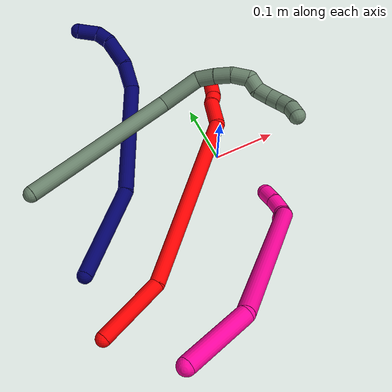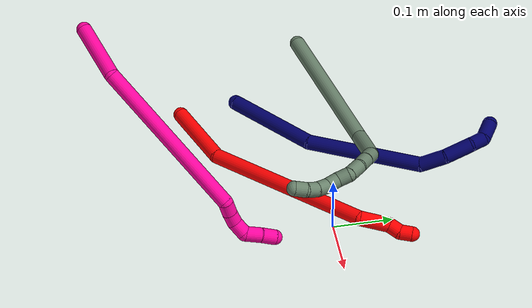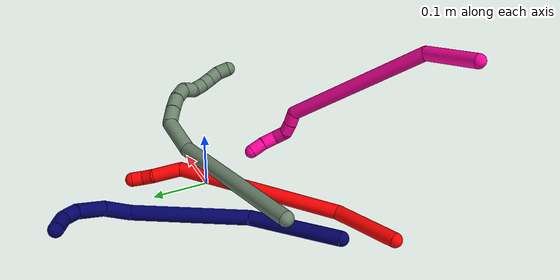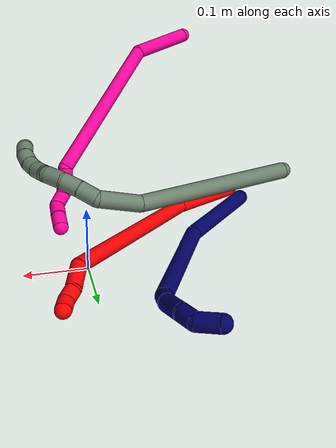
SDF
<sdf version="1.7">
 <world name="default">
  <model name="2">
   <static>0</static>
   <link name="2">
    <collision name="collision-cylinder-e_1_1_4">
     <pose>0.047054 0.029443 0.017783 -1.02746 0.939561 -0.558002</pose>
     <geometry><cylinder><radius>0.0125</radius><length>0.11657</length></cylinder></geometry>
     <surface>
      <friction><ode><mu>1.16</mu><mu2>1.16</mu2><slip1>0</slip1><slip2>0</slip2></ode></friction>
      <contact><ode><kp>1e+06</kp><kd>1</kd><max_vel>0</max_vel><min_depth>0.001</min_depth></ode></contact>
     </surface>
    </collision>
    <visual name="visual-cylinder-e_1_1_4">
     <pose>0.047054 0.029443 0.017783 -1.02746 0.939561 -0.558002</pose>
     <geometry><cylinder><radius>0.0125</radius><length>0.11657</length></cylinder></geometry>
     <material><ambient>1 0 0 1</ambient></material>
    </visual>
    <collision name="collision-cylinder-e_2_4_5">
     <pose>0.200089 0.159448 0.030215 -1.62395 0.810927 -0.850184</pose>
     <geometry><cylinder><radius>0.0125</radius><length>0.292393</length></cylinder></geometry>
     <surface>
      <friction><ode><mu>1.16</mu><mu2>1.16</mu2><slip1>0</slip1><slip2>0</slip2></ode></friction>
      <contact><ode><kp>1e+06</kp><kd>1</kd><max_vel>0</max_vel><min_depth>0.001</min_depth></ode></contact>
     </surface>
    </collision>
    <visual name="visual-cylinder-e_2_4_5">
     <pose>0.200089 0.159448 0.030215 -1.62395 0.810927 -0.850184</pose>
     <geometry><cylinder><radius>0.0125</radius><length>0.292393</length></cylinder></geometry>
     <material><ambient>1 0 0 1</ambient></material>
    </visual>
    <collision name="collision-cylinder-e_3_5_6">
     <pose>0.323056 0.272101 0.011044 -2.42283 0.746458 -1.61219</pose>
     <geometry><cylinder><radius>0.0125</radius><length>0.050029</length></cylinder></geometry>
     <surface>
      <friction><ode><mu>1.16</mu><mu2>1.16</mu2><slip1>0</slip1><slip2>0</slip2></ode></friction>
      <contact><ode><kp>1e+06</kp><kd>1</kd><max_vel>0</max_vel><min_depth>0.001</min_depth></ode></contact>
     </surface>
    </collision>
    <visual name="visual-cylinder-e_3_5_6">
     <pose>0.323056 0.272101 0.011044 -2.42283 0.746458 -1.61219</pose>
     <geometry><cylinder><radius>0.0125</radius><length>0.050029</length></cylinder></geometry>
     <material><ambient>1 0 0 1</ambient></material>
    </visual>
    <collision name="collision-cylinder-e_4_6_7">
     <pose>0.349275 0.287813 -0.005351 -2.18885 1.12229 -1.76681</pose>
     <geometry><cylinder><radius>0.0125</radius><length>0.020494</length></cylinder></geometry>
     <surface>
      <friction><ode><mu>1.16</mu><mu2>1.16</mu2><slip1>0</slip1><slip2>0</slip2></ode></friction>
      <contact><ode><kp>1e+06</kp><kd>1</kd><max_vel>0</max_vel><min_depth>0.001</min_depth></ode></contact>
     </surface>
    </collision>
    <visual name="visual-cylinder-e_4_6_7">
     <pose>0.349275 0.287813 -0.005351 -2.18885 1.12229 -1.76681</pose>
     <geometry><cylinder><radius>0.0125</radius><length>0.020494</length></cylinder></geometry>
     <material><ambient>1 0 0 1</ambient></material>
    </visual>
    <collision name="collision-cylinder-e_5_7_2">
     <pose>0.364992 0.29729 -0.0133 -2.31344 0.684244 -1.36201</pose>
     <geometry><cylinder><radius>0.0125</radius><length>0.020514</length></cylinder></geometry>
     <surface>
      <friction><ode><mu>1.16</mu><mu2>1.16</mu2><slip1>0</slip1><slip2>0</slip2></ode></friction>
      <contact><ode><kp>1e+06</kp><kd>1</kd><max_vel>0</max_vel><min_depth>0.001</min_depth></ode></contact>
     </surface>
    </collision>
    <visual name="visual-cylinder-e_5_7_2">
     <pose>0.364992 0.29729 -0.0133 -2.31344 0.684244 -1.36201</pose>
     <geometry><cylinder><radius>0.0125</radius><length>0.020514</length></cylinder></geometry>
     <material><ambient>1 0 0 1</ambient></material>
    </visual>
    <collision name="collision-sphere-2">
     <pose>0.371476 0.303145 -0.018675 0 -0 0</pose>
     <geometry><sphere><radius>0.0125</radius></sphere></geometry>
     <surface>
      <friction><ode><mu>1.16</mu><mu2>1.16</mu2><slip1>0</slip1><slip2>0</slip2></ode></friction>
      <contact><ode><kp>1e+06</kp><kd>1</kd><max_vel>0</max_vel><min_depth>0.001</min_depth></ode></contact>
     </surface>
    </collision>
    <visual name="visual-sphere-2">
     <pose>0.371476 0.303145 -0.018675 0 -0 0</pose>
     <geometry><sphere><radius>0.0125</radius></sphere></geometry>
     <material><ambient>1 0 0 1</ambient></material>
    </visual>
    <collision name="collision-sphere-7">
     <pose>0.358509 0.291435 -0.007925 0 -0 0</pose>
     <geometry><sphere><radius>0.0125</radius></sphere></geometry>
     <surface>
      <friction><ode><mu>1.16</mu><mu2>1.16</mu2><slip1>0</slip1><slip2>0</slip2></ode></friction>
      <contact><ode><kp>1e+06</kp><kd>1</kd><max_vel>0</max_vel><min_depth>0.001</min_depth></ode></contact>
     </surface>
    </collision>
    <visual name="visual-sphere-7">
     <pose>0.358509 0.291435 -0.007925 0 -0 0</pose>
     <geometry><sphere><radius>0.0125</radius></sphere></geometry>
     <material><ambient>1 0 0 1</ambient></material>
    </visual>
    <collision name="collision-sphere-6">
     <pose>0.340042 0.284192 -0.002776 0 -0 0</pose>
     <geometry><sphere><radius>0.0125</radius></sphere></geometry>
     <surface>
      <friction><ode><mu>1.16</mu><mu2>1.16</mu2><slip1>0</slip1><slip2>0</slip2></ode></friction>
      <contact><ode><kp>1e+06</kp><kd>1</kd><max_vel>0</max_vel><min_depth>0.001</min_depth></ode></contact>
     </surface>
    </collision>
    <visual name="visual-sphere-6">
     <pose>0.340042 0.284192 -0.002776 0 -0 0</pose>
     <geometry><sphere><radius>0.0125</radius></sphere></geometry>
     <material><ambient>1 0 0 1</ambient></material>
    </visual>
    <collision name="collision-sphere-5">
     <pose>0.30607 0.260009 0.024865 0 -0 0</pose>
     <geometry><sphere><radius>0.0125</radius></sphere></geometry>
     <surface>
      <friction><ode><mu>1.16</mu><mu2>1.16</mu2><slip1>0</slip1><slip2>0</slip2></ode></friction>
      <contact><ode><kp>1e+06</kp><kd>1</kd><max_vel>0</max_vel><min_depth>0.001</min_depth></ode></contact>
     </surface>
    </collision>
    <visual name="visual-sphere-5">
     <pose>0.30607 0.260009 0.024865 0 -0 0</pose>
     <geometry><sphere><radius>0.0125</radius></sphere></geometry>
     <material><ambient>1 0 0 1</ambient></material>
    </visual>
    <collision name="collision-sphere-1">
     <geometry><sphere><radius>0.0125</radius></sphere></geometry>
     <surface>
      <friction><ode><mu>1.16</mu><mu2>1.16</mu2><slip1>0</slip1><slip2>0</slip2></ode></friction>
      <contact><ode><kp>1e+06</kp><kd>1</kd><max_vel>0</max_vel><min_depth>0.001</min_depth></ode></contact>
     </surface>
    </collision>
    <visual name="visual-sphere-1">
     <geometry><sphere><radius>0.0125</radius></sphere></geometry>
     <material><ambient>1 0 0 1</ambient></material>
    </visual>
    <collision name="collision-sphere-4">
     <pose>0.094107 0.058886 0.035565 0 -0 0</pose>
     <geometry><sphere><radius>0.0125</radius></sphere></geometry>
     <surface>
      <friction><ode><mu>1.16</mu><mu2>1.16</mu2><slip1>0</slip1><slip2>0</slip2></ode></friction>
      <contact><ode><kp>1e+06</kp><kd>1</kd><max_vel>0</max_vel><min_depth>0.001</min_depth></ode></contact>
     </surface>
    </collision>
    <visual name="visual-sphere-4">
     <pose>0.094107 0.058886 0.035565 0 -0 0</pose>
     <geometry><sphere><radius>0.0125</radius></sphere></geometry>
     <material><ambient>1 0 0 1</ambient></material>
    </visual>
    <inertial>
     <pose>0.189594 0.151327 0.022155 0 -0 0</pose>
     <mass>0.5</mass>
     <inertia>
      <ixx>-8.9e-05</ixx>
      <ixy>0</ixy>
      <ixz>0</ixz>
      <iyy>6.9e-05</iyy>
      <iyz>0</iyz>
      <izz>-0.003158</izz>
     </inertia>
    </inertial>
   </link>
   <pose>-0.297444 -0.206822 0.015191 1.23165 0.65195 0.506244</pose>
  </model>
  <model name="7">
   <static>0</static>
   <link name="7">
    <collision name="collision-cylinder-e_1_1_4">
     <pose>0.063314 0.044522 0.004903 -1.46111 0.955089 -0.868261</pose>
     <geometry><cylinder><radius>0.0125</radius><length>0.155113</length></cylinder></geometry>
     <surface>
      <friction><ode><mu>1.16</mu><mu2>1.16</mu2><slip1>0</slip1><slip2>0</slip2></ode></friction>
      <contact><ode><kp>1e+06</kp><kd>1</kd><max_vel>0</max_vel><min_depth>0.001</min_depth></ode></contact>
     </surface>
    </collision>
    <visual name="visual-cylinder-e_1_1_4">
     <pose>0.063314 0.044522 0.004903 -1.46111 0.955089 -0.868261</pose>
     <geometry><cylinder><radius>0.0125</radius><length>0.155113</length></cylinder></geometry>
     <material><ambient>0.003922 0 0.403922 1</ambient></material>
    </visual>
    <collision name="collision-cylinder-e_2_4_5">
     <pose>0.182291 0.167819 0.022656 -1.40911 0.608969 -0.52211</pose>
     <geometry><cylinder><radius>0.0125</radius><length>0.194615</length></cylinder></geometry>
     <surface>
      <friction><ode><mu>1.16</mu><mu2>1.16</mu2><slip1>0</slip1><slip2>0</slip2></ode></friction>
      <contact><ode><kp>1e+06</kp><kd>1</kd><max_vel>0</max_vel><min_depth>0.001</min_depth></ode></contact>
     </surface>
    </collision>
    <visual name="visual-cylinder-e_2_4_5">
     <pose>0.182291 0.167819 0.022656 -1.40911 0.608969 -0.52211</pose>
     <geometry><cylinder><radius>0.0125</radius><length>0.194615</length></cylinder></geometry>
     <material><ambient>0.003922 0 0.403922 1</ambient></material>
    </visual>
    <collision name="collision-cylinder-e_3_5_6">
     <pose>0.243228 0.265177 0.046468 -1.03777 0.239766 -0.137369</pose>
     <geometry><cylinder><radius>0.0125</radius><length>0.044424</length></cylinder></geometry>
     <surface>
      <friction><ode><mu>1.16</mu><mu2>1.16</mu2><slip1>0</slip1><slip2>0</slip2></ode></friction>
      <contact><ode><kp>1e+06</kp><kd>1</kd><max_vel>0</max_vel><min_depth>0.001</min_depth></ode></contact>
     </surface>
    </collision>
    <visual name="visual-cylinder-e_3_5_6">
     <pose>0.243228 0.265177 0.046468 -1.03777 0.239766 -0.137369</pose>
     <geometry><cylinder><radius>0.0125</radius><length>0.044424</length></cylinder></geometry>
     <material><ambient>0.003922 0 0.403922 1</ambient></material>
    </visual>
    <collision name="collision-cylinder-e_4_6_7">
     <pose>0.247522 0.305404 0.066547 -1.17222 -0.041709 0.027694</pose>
     <geometry><cylinder><radius>0.0125</radius><length>0.047008</length></cylinder></geometry>
     <surface>
      <friction><ode><mu>1.16</mu><mu2>1.16</mu2><slip1>0</slip1><slip2>0</slip2></ode></friction>
      <contact><ode><kp>1e+06</kp><kd>1</kd><max_vel>0</max_vel><min_depth>0.001</min_depth></ode></contact>
     </surface>
    </collision>
    <visual name="visual-cylinder-e_4_6_7">
     <pose>0.247522 0.305404 0.066547 -1.17222 -0.041709 0.027694</pose>
     <geometry><cylinder><radius>0.0125</radius><length>0.047008</length></cylinder></geometry>
     <material><ambient>0.003922 0 0.403922 1</ambient></material>
    </visual>
    <collision name="collision-cylinder-e_5_7_8">
     <pose>0.243006 0.338881 0.077375 -1.42696 -0.28752 0.249307</pose>
     <geometry><cylinder><radius>0.0125</radius><length>0.024941</length></cylinder></geometry>
     <surface>
      <friction><ode><mu>1.16</mu><mu2>1.16</mu2><slip1>0</slip1><slip2>0</slip2></ode></friction>
      <contact><ode><kp>1e+06</kp><kd>1</kd><max_vel>0</max_vel><min_depth>0.001</min_depth></ode></contact>
     </surface>
    </collision>
    <visual name="visual-cylinder-e_5_7_8">
     <pose>0.243006 0.338881 0.077375 -1.42696 -0.28752 0.249307</pose>
     <geometry><cylinder><radius>0.0125</radius><length>0.024941</length></cylinder></geometry>
     <material><ambient>0.003922 0 0.403922 1</ambient></material>
    </visual>
    <collision name="collision-cylinder-e_6_8_2">
     <pose>0.226168 0.360753 0.08219 -1.27116 -0.902382 0.686563</pose>
     <geometry><cylinder><radius>0.0125</radius><length>0.033899</length></cylinder></geometry>
     <surface>
      <friction><ode><mu>1.16</mu><mu2>1.16</mu2><slip1>0</slip1><slip2>0</slip2></ode></friction>
      <contact><ode><kp>1e+06</kp><kd>1</kd><max_vel>0</max_vel><min_depth>0.001</min_depth></ode></contact>
     </surface>
    </collision>
    <visual name="visual-cylinder-e_6_8_2">
     <pose>0.226168 0.360753 0.08219 -1.27116 -0.902382 0.686563</pose>
     <geometry><cylinder><radius>0.0125</radius><length>0.033899</length></cylinder></geometry>
     <material><ambient>0.003922 0 0.403922 1</ambient></material>
    </visual>
    <collision name="collision-sphere-2">
     <pose>0.212866 0.370789 0.08529 0 -0 0</pose>
     <geometry><sphere><radius>0.0125</radius></sphere></geometry>
     <surface>
      <friction><ode><mu>1.16</mu><mu2>1.16</mu2><slip1>0</slip1><slip2>0</slip2></ode></friction>
      <contact><ode><kp>1e+06</kp><kd>1</kd><max_vel>0</max_vel><min_depth>0.001</min_depth></ode></contact>
     </surface>
    </collision>
    <visual name="visual-sphere-2">
     <pose>0.212866 0.370789 0.08529 0 -0 0</pose>
     <geometry><sphere><radius>0.0125</radius></sphere></geometry>
     <material><ambient>0.003922 0 0.403922 1</ambient></material>
    </visual>
    <collision name="collision-sphere-4">
     <pose>0.126628 0.089045 0.009807 0 -0 0</pose>
     <geometry><sphere><radius>0.0125</radius></sphere></geometry>
     <surface>
      <friction><ode><mu>1.16</mu><mu2>1.16</mu2><slip1>0</slip1><slip2>0</slip2></ode></friction>
      <contact><ode><kp>1e+06</kp><kd>1</kd><max_vel>0</max_vel><min_depth>0.001</min_depth></ode></contact>
     </surface>
    </collision>
    <visual name="visual-sphere-4">
     <pose>0.126628 0.089045 0.009807 0 -0 0</pose>
     <geometry><sphere><radius>0.0125</radius></sphere></geometry>
     <material><ambient>0.003922 0 0.403922 1</ambient></material>
    </visual>
    <collision name="collision-sphere-1">
     <geometry><sphere><radius>0.0125</radius></sphere></geometry>
     <surface>
      <friction><ode><mu>1.16</mu><mu2>1.16</mu2><slip1>0</slip1><slip2>0</slip2></ode></friction>
      <contact><ode><kp>1e+06</kp><kd>1</kd><max_vel>0</max_vel><min_depth>0.001</min_depth></ode></contact>
     </surface>
    </collision>
    <visual name="visual-sphere-1">
     <geometry><sphere><radius>0.0125</radius></sphere></geometry>
     <material><ambient>0.003922 0 0.403922 1</ambient></material>
    </visual>
    <collision name="collision-sphere-8">
     <pose>0.23947 0.350716 0.079089 0 -0 0</pose>
     <geometry><sphere><radius>0.0125</radius></sphere></geometry>
     <surface>
      <friction><ode><mu>1.16</mu><mu2>1.16</mu2><slip1>0</slip1><slip2>0</slip2></ode></friction>
      <contact><ode><kp>1e+06</kp><kd>1</kd><max_vel>0</max_vel><min_depth>0.001</min_depth></ode></contact>
     </surface>
    </collision>
    <visual name="visual-sphere-8">
     <pose>0.23947 0.350716 0.079089 0 -0 0</pose>
     <geometry><sphere><radius>0.0125</radius></sphere></geometry>
     <material><ambient>0.003922 0 0.403922 1</ambient></material>
    </visual>
    <collision name="collision-sphere-5">
     <pose>0.237953 0.246594 0.035504 0 -0 0</pose>
     <geometry><sphere><radius>0.0125</radius></sphere></geometry>
     <surface>
      <friction><ode><mu>1.16</mu><mu2>1.16</mu2><slip1>0</slip1><slip2>0</slip2></ode></friction>
      <contact><ode><kp>1e+06</kp><kd>1</kd><max_vel>0</max_vel><min_depth>0.001</min_depth></ode></contact>
     </surface>
    </collision>
    <visual name="visual-sphere-5">
     <pose>0.237953 0.246594 0.035504 0 -0 0</pose>
     <geometry><sphere><radius>0.0125</radius></sphere></geometry>
     <material><ambient>0.003922 0 0.403922 1</ambient></material>
    </visual>
    <collision name="collision-sphere-6">
     <pose>0.248502 0.283761 0.057433 0 -0 0</pose>
     <geometry><sphere><radius>0.0125</radius></sphere></geometry>
     <surface>
      <friction><ode><mu>1.16</mu><mu2>1.16</mu2><slip1>0</slip1><slip2>0</slip2></ode></friction>
      <contact><ode><kp>1e+06</kp><kd>1</kd><max_vel>0</max_vel><min_depth>0.001</min_depth></ode></contact>
     </surface>
    </collision>
    <visual name="visual-sphere-6">
     <pose>0.248502 0.283761 0.057433 0 -0 0</pose>
     <geometry><sphere><radius>0.0125</radius></sphere></geometry>
     <material><ambient>0.003922 0 0.403922 1</ambient></material>
    </visual>
    <collision name="collision-sphere-7">
     <pose>0.246542 0.327046 0.075661 0 -0 0</pose>
     <geometry><sphere><radius>0.0125</radius></sphere></geometry>
     <surface>
      <friction><ode><mu>1.16</mu><mu2>1.16</mu2><slip1>0</slip1><slip2>0</slip2></ode></friction>
      <contact><ode><kp>1e+06</kp><kd>1</kd><max_vel>0</max_vel><min_depth>0.001</min_depth></ode></contact>
     </surface>
    </collision>
    <visual name="visual-sphere-7">
     <pose>0.246542 0.327046 0.075661 0 -0 0</pose>
     <geometry><sphere><radius>0.0125</radius></sphere></geometry>
     <material><ambient>0.003922 0 0.403922 1</ambient></material>
    </visual>
    <inertial>
     <pose>0.162931 0.172768 0.030156 0 -0 0</pose>
     <mass>0.5</mass>
     <inertia>
      <ixx>0.000208</ixx>
      <ixy>0</ixy>
      <ixz>0</ixz>
      <iyy>0.000129</iyy>
      <iyz>0</iyz>
      <izz>-0.001313</izz>
     </inertia>
    </inertial>
   </link>
   <pose>-0.28416 -0.114201 0.040009 -0.121549 0.021763 0.125231</pose>
  </model>
  <model name="17">
   <static>0</static>
   <link name="17">
    <collision name="collision-cylinder-e_1_1_4">
     <pose>-0.014735 0.019616 -0.121187 -2.98112 -0.119453 1.27887</pose>
     <geometry><cylinder><radius>0.0125</radius><length>0.247291</length></cylinder></geometry>
     <surface>
      <friction><ode><mu>1.16</mu><mu2>1.16</mu2><slip1>0</slip1><slip2>0</slip2></ode></friction>
      <contact><ode><kp>1e+06</kp><kd>1</kd><max_vel>0</max_vel><min_depth>0.001</min_depth></ode></contact>
     </surface>
    </collision>
    <visual name="visual-cylinder-e_1_1_4">
     <pose>-0.014735 0.019616 -0.121187 -2.98112 -0.119453 1.27887</pose>
     <geometry><cylinder><radius>0.0125</radius><length>0.247291</length></cylinder></geometry>
     <material><ambient>0.415686 0.509804 0.423529 1</ambient></material>
    </visual>
    <collision name="collision-cylinder-e_2_4_5">
     <pose>-0.02611 0.051413 -0.272596 -2.75846 0.10273 -0.518233</pose>
     <geometry><cylinder><radius>0.0125</radius><length>0.065514</length></cylinder></geometry>
     <surface>
      <friction><ode><mu>1.16</mu><mu2>1.16</mu2><slip1>0</slip1><slip2>0</slip2></ode></friction>
      <contact><ode><kp>1e+06</kp><kd>1</kd><max_vel>0</max_vel><min_depth>0.001</min_depth></ode></contact>
     </surface>
    </collision>
    <visual name="visual-cylinder-e_2_4_5">
     <pose>-0.02611 0.051413 -0.272596 -2.75846 0.10273 -0.518233</pose>
     <geometry><cylinder><radius>0.0125</radius><length>0.065514</length></cylinder></geometry>
     <material><ambient>0.415686 0.509804 0.423529 1</ambient></material>
    </visual>
    <collision name="collision-cylinder-e_3_5_6">
     <pose>-0.012974 0.067415 -0.312805 -2.77615 0.740681 -2.25317</pose>
     <geometry><cylinder><radius>0.0125</radius><length>0.028978</length></cylinder></geometry>
     <surface>
      <friction><ode><mu>1.16</mu><mu2>1.16</mu2><slip1>0</slip1><slip2>0</slip2></ode></friction>
      <contact><ode><kp>1e+06</kp><kd>1</kd><max_vel>0</max_vel><min_depth>0.001</min_depth></ode></contact>
     </surface>
    </collision>
    <visual name="visual-cylinder-e_3_5_6">
     <pose>-0.012974 0.067415 -0.312805 -2.77615 0.740681 -2.25317</pose>
     <geometry><cylinder><radius>0.0125</radius><length>0.028978</length></cylinder></geometry>
     <material><ambient>0.415686 0.509804 0.423529 1</ambient></material>
    </visual>
    <collision name="collision-cylinder-e_4_6_7">
     <pose>0.006273 0.073432 -0.332128 -2.91067 0.779017 -2.59086</pose>
     <geometry><cylinder><radius>0.0125</radius><length>0.026956</length></cylinder></geometry>
     <surface>
      <friction><ode><mu>1.16</mu><mu2>1.16</mu2><slip1>0</slip1><slip2>0</slip2></ode></friction>
      <contact><ode><kp>1e+06</kp><kd>1</kd><max_vel>0</max_vel><min_depth>0.001</min_depth></ode></contact>
     </surface>
    </collision>
    <visual name="visual-cylinder-e_4_6_7">
     <pose>0.006273 0.073432 -0.332128 -2.91067 0.779017 -2.59086</pose>
     <geometry><cylinder><radius>0.0125</radius><length>0.026956</length></cylinder></geometry>
     <material><ambient>0.415686 0.509804 0.423529 1</ambient></material>
    </visual>
    <collision name="collision-cylinder-e_5_7_8">
     <pose>0.026487 0.074414 -0.350125 3.00251 0.887679 2.85068</pose>
     <geometry><cylinder><radius>0.0125</radius><length>0.027708</length></cylinder></geometry>
     <surface>
      <friction><ode><mu>1.16</mu><mu2>1.16</mu2><slip1>0</slip1><slip2>0</slip2></ode></friction>
      <contact><ode><kp>1e+06</kp><kd>1</kd><max_vel>0</max_vel><min_depth>0.001</min_depth></ode></contact>
     </surface>
    </collision>
    <visual name="visual-cylinder-e_5_7_8">
     <pose>0.026487 0.074414 -0.350125 3.00251 0.887679 2.85068</pose>
     <geometry><cylinder><radius>0.0125</radius><length>0.027708</length></cylinder></geometry>
     <material><ambient>0.415686 0.509804 0.423529 1</ambient></material>
    </visual>
    <collision name="collision-cylinder-e_6_8_9">
     <pose>0.045584 0.06682 -0.359779 1.72532 0.912466 1.04085</pose>
     <geometry><cylinder><radius>0.0125</radius><length>0.021116</length></cylinder></geometry>
     <surface>
      <friction><ode><mu>1.16</mu><mu2>1.16</mu2><slip1>0</slip1><slip2>0</slip2></ode></friction>
      <contact><ode><kp>1e+06</kp><kd>1</kd><max_vel>0</max_vel><min_depth>0.001</min_depth></ode></contact>
     </surface>
    </collision>
    <visual name="visual-cylinder-e_6_8_9">
     <pose>0.045584 0.06682 -0.359779 1.72532 0.912466 1.04085</pose>
     <geometry><cylinder><radius>0.0125</radius><length>0.021116</length></cylinder></geometry>
     <material><ambient>0.415686 0.509804 0.423529 1</ambient></material>
    </visual>
    <collision name="collision-cylinder-e_7_9_10">
     <pose>0.063453 0.057412 -0.365293 2.55154 1.05169 2.17683</pose>
     <geometry><cylinder><radius>0.0125</radius><length>0.021925</length></cylinder></geometry>
     <surface>
      <friction><ode><mu>1.16</mu><mu2>1.16</mu2><slip1>0</slip1><slip2>0</slip2></ode></friction>
      <contact><ode><kp>1e+06</kp><kd>1</kd><max_vel>0</max_vel><min_depth>0.001</min_depth></ode></contact>
     </surface>
    </collision>
    <visual name="visual-cylinder-e_7_9_10">
     <pose>0.063453 0.057412 -0.365293 2.55154 1.05169 2.17683</pose>
     <geometry><cylinder><radius>0.0125</radius><length>0.021925</length></cylinder></geometry>
     <material><ambient>0.415686 0.509804 0.423529 1</ambient></material>
    </visual>
    <collision name="collision-cylinder-e_8_10_11">
     <pose>0.082328 0.05308 -0.373226 2.77637 1.19829 2.61338</pose>
     <geometry><cylinder><radius>0.0125</radius><length>0.020089</length></cylinder></geometry>
     <surface>
      <friction><ode><mu>1.16</mu><mu2>1.16</mu2><slip1>0</slip1><slip2>0</slip2></ode></friction>
      <contact><ode><kp>1e+06</kp><kd>1</kd><max_vel>0</max_vel><min_depth>0.001</min_depth></ode></contact>
     </surface>
    </collision>
    <visual name="visual-cylinder-e_8_10_11">
     <pose>0.082328 0.05308 -0.373226 2.77637 1.19829 2.61338</pose>
     <geometry><cylinder><radius>0.0125</radius><length>0.020089</length></cylinder></geometry>
     <material><ambient>0.415686 0.509804 0.423529 1</ambient></material>
    </visual>
    <collision name="collision-cylinder-e_9_11_12">
     <pose>0.101782 0.051945 -0.378006 -3.017 1.43534 -2.99893</pose>
     <geometry><cylinder><radius>0.0125</radius><length>0.020384</length></cylinder></geometry>
     <surface>
      <friction><ode><mu>1.16</mu><mu2>1.16</mu2><slip1>0</slip1><slip2>0</slip2></ode></friction>
      <contact><ode><kp>1e+06</kp><kd>1</kd><max_vel>0</max_vel><min_depth>0.001</min_depth></ode></contact>
     </surface>
    </collision>
    <visual name="visual-cylinder-e_9_11_12">
     <pose>0.101782 0.051945 -0.378006 -3.017 1.43534 -2.99893</pose>
     <geometry><cylinder><radius>0.0125</radius><length>0.020384</length></cylinder></geometry>
     <material><ambient>0.415686 0.509804 0.423529 1</ambient></material>
    </visual>
    <collision name="collision-cylinder-e_10_12_2">
     <pose>0.121674 0.050931 -0.377621 0.594995 1.35814 0.485178</pose>
     <geometry><cylinder><radius>0.0125</radius><length>0.02004</length></cylinder></geometry>
     <surface>
      <friction><ode><mu>1.16</mu><mu2>1.16</mu2><slip1>0</slip1><slip2>0</slip2></ode></friction>
      <contact><ode><kp>1e+06</kp><kd>1</kd><max_vel>0</max_vel><min_depth>0.001</min_depth></ode></contact>
     </surface>
    </collision>
    <visual name="visual-cylinder-e_10_12_2">
     <pose>0.121674 0.050931 -0.377621 0.594995 1.35814 0.485178</pose>
     <geometry><cylinder><radius>0.0125</radius><length>0.02004</length></cylinder></geometry>
     <material><ambient>0.415686 0.509804 0.423529 1</ambient></material>
    </visual>
    <collision name="collision-sphere-2">
     <pose>0.131468 0.049746 -0.375869 0 -0 0</pose>
     <geometry><sphere><radius>0.0125</radius></sphere></geometry>
     <surface>
      <friction><ode><mu>1.16</mu><mu2>1.16</mu2><slip1>0</slip1><slip2>0</slip2></ode></friction>
      <contact><ode><kp>1e+06</kp><kd>1</kd><max_vel>0</max_vel><min_depth>0.001</min_depth></ode></contact>
     </surface>
    </collision>
    <visual name="visual-sphere-2">
     <pose>0.131468 0.049746 -0.375869 0 -0 0</pose>
     <geometry><sphere><radius>0.0125</radius></sphere></geometry>
     <material><ambient>0.415686 0.509804 0.423529 1</ambient></material>
    </visual>
    <collision name="collision-sphere-12">
     <pose>0.11188 0.052116 -0.379372 0 -0 0</pose>
     <geometry><sphere><radius>0.0125</radius></sphere></geometry>
     <surface>
      <friction><ode><mu>1.16</mu><mu2>1.16</mu2><slip1>0</slip1><slip2>0</slip2></ode></friction>
      <contact><ode><kp>1e+06</kp><kd>1</kd><max_vel>0</max_vel><min_depth>0.001</min_depth></ode></contact>
     </surface>
    </collision>
    <visual name="visual-sphere-12">
     <pose>0.11188 0.052116 -0.379372 0 -0 0</pose>
     <geometry><sphere><radius>0.0125</radius></sphere></geometry>
     <material><ambient>0.415686 0.509804 0.423529 1</ambient></material>
    </visual>
    <collision name="collision-sphere-11">
     <pose>0.091683 0.051774 -0.376641 0 -0 0</pose>
     <geometry><sphere><radius>0.0125</radius></sphere></geometry>
     <surface>
      <friction><ode><mu>1.16</mu><mu2>1.16</mu2><slip1>0</slip1><slip2>0</slip2></ode></friction>
      <contact><ode><kp>1e+06</kp><kd>1</kd><max_vel>0</max_vel><min_depth>0.001</min_depth></ode></contact>
     </surface>
    </collision>
    <visual name="visual-sphere-11">
     <pose>0.091683 0.051774 -0.376641 0 -0 0</pose>
     <geometry><sphere><radius>0.0125</radius></sphere></geometry>
     <material><ambient>0.415686 0.509804 0.423529 1</ambient></material>
    </visual>
    <collision name="collision-sphere-10">
     <pose>0.072972 0.054386 -0.369811 0 -0 0</pose>
     <geometry><sphere><radius>0.0125</radius></sphere></geometry>
     <surface>
      <friction><ode><mu>1.16</mu><mu2>1.16</mu2><slip1>0</slip1><slip2>0</slip2></ode></friction>
      <contact><ode><kp>1e+06</kp><kd>1</kd><max_vel>0</max_vel><min_depth>0.001</min_depth></ode></contact>
     </surface>
    </collision>
    <visual name="visual-sphere-10">
     <pose>0.072972 0.054386 -0.369811 0 -0 0</pose>
     <geometry><sphere><radius>0.0125</radius></sphere></geometry>
     <material><ambient>0.415686 0.509804 0.423529 1</ambient></material>
    </visual>
    <collision name="collision-sphere-9">
     <pose>0.053935 0.060438 -0.360774 0 -0 0</pose>
     <geometry><sphere><radius>0.0125</radius></sphere></geometry>
     <surface>
      <friction><ode><mu>1.16</mu><mu2>1.16</mu2><slip1>0</slip1><slip2>0</slip2></ode></friction>
      <contact><ode><kp>1e+06</kp><kd>1</kd><max_vel>0</max_vel><min_depth>0.001</min_depth></ode></contact>
     </surface>
    </collision>
    <visual name="visual-sphere-9">
     <pose>0.053935 0.060438 -0.360774 0 -0 0</pose>
     <geometry><sphere><radius>0.0125</radius></sphere></geometry>
     <material><ambient>0.415686 0.509804 0.423529 1</ambient></material>
    </visual>
    <collision name="collision-sphere-4">
     <pose>-0.029469 0.039232 -0.242375 0 -0 0</pose>
     <geometry><sphere><radius>0.0125</radius></sphere></geometry>
     <surface>
      <friction><ode><mu>1.16</mu><mu2>1.16</mu2><slip1>0</slip1><slip2>0</slip2></ode></friction>
      <contact><ode><kp>1e+06</kp><kd>1</kd><max_vel>0</max_vel><min_depth>0.001</min_depth></ode></contact>
     </surface>
    </collision>
    <visual name="visual-sphere-4">
     <pose>-0.029469 0.039232 -0.242375 0 -0 0</pose>
     <geometry><sphere><radius>0.0125</radius></sphere></geometry>
     <material><ambient>0.415686 0.509804 0.423529 1</ambient></material>
    </visual>
    <collision name="collision-sphere-1">
     <geometry><sphere><radius>0.0125</radius></sphere></geometry>
     <surface>
      <friction><ode><mu>1.16</mu><mu2>1.16</mu2><slip1>0</slip1><slip2>0</slip2></ode></friction>
      <contact><ode><kp>1e+06</kp><kd>1</kd><max_vel>0</max_vel><min_depth>0.001</min_depth></ode></contact>
     </surface>
    </collision>
    <visual name="visual-sphere-1">
     <geometry><sphere><radius>0.0125</radius></sphere></geometry>
     <material><ambient>0.415686 0.509804 0.423529 1</ambient></material>
    </visual>
    <collision name="collision-sphere-8">
     <pose>0.037232 0.073202 -0.358785 0 -0 0</pose>
     <geometry><sphere><radius>0.0125</radius></sphere></geometry>
     <surface>
      <friction><ode><mu>1.16</mu><mu2>1.16</mu2><slip1>0</slip1><slip2>0</slip2></ode></friction>
      <contact><ode><kp>1e+06</kp><kd>1</kd><max_vel>0</max_vel><min_depth>0.001</min_depth></ode></contact>
     </surface>
    </collision>
    <visual name="visual-sphere-8">
     <pose>0.037232 0.073202 -0.358785 0 -0 0</pose>
     <geometry><sphere><radius>0.0125</radius></sphere></geometry>
     <material><ambient>0.415686 0.509804 0.423529 1</ambient></material>
    </visual>
    <collision name="collision-sphere-5">
     <pose>-0.022751 0.063594 -0.302818 0 -0 0</pose>
     <geometry><sphere><radius>0.0125</radius></sphere></geometry>
     <surface>
      <friction><ode><mu>1.16</mu><mu2>1.16</mu2><slip1>0</slip1><slip2>0</slip2></ode></friction>
      <contact><ode><kp>1e+06</kp><kd>1</kd><max_vel>0</max_vel><min_depth>0.001</min_depth></ode></contact>
     </surface>
    </collision>
    <visual name="visual-sphere-5">
     <pose>-0.022751 0.063594 -0.302818 0 -0 0</pose>
     <geometry><sphere><radius>0.0125</radius></sphere></geometry>
     <material><ambient>0.415686 0.509804 0.423529 1</ambient></material>
    </visual>
    <collision name="collision-sphere-6">
     <pose>-0.003197 0.071236 -0.322792 0 -0 0</pose>
     <geometry><sphere><radius>0.0125</radius></sphere></geometry>
     <surface>
      <friction><ode><mu>1.16</mu><mu2>1.16</mu2><slip1>0</slip1><slip2>0</slip2></ode></friction>
      <contact><ode><kp>1e+06</kp><kd>1</kd><max_vel>0</max_vel><min_depth>0.001</min_depth></ode></contact>
     </surface>
    </collision>
    <visual name="visual-sphere-6">
     <pose>-0.003197 0.071236 -0.322792 0 -0 0</pose>
     <geometry><sphere><radius>0.0125</radius></sphere></geometry>
     <material><ambient>0.415686 0.509804 0.423529 1</ambient></material>
    </visual>
    <collision name="collision-sphere-7">
     <pose>0.015742 0.075627 -0.341465 0 -0 0</pose>
     <geometry><sphere><radius>0.0125</radius></sphere></geometry>
     <surface>
      <friction><ode><mu>1.16</mu><mu2>1.16</mu2><slip1>0</slip1><slip2>0</slip2></ode></friction>
      <contact><ode><kp>1e+06</kp><kd>1</kd><max_vel>0</max_vel><min_depth>0.001</min_depth></ode></contact>
     </surface>
    </collision>
    <visual name="visual-sphere-7">
     <pose>0.015742 0.075627 -0.341465 0 -0 0</pose>
     <geometry><sphere><radius>0.0125</radius></sphere></geometry>
     <material><ambient>0.415686 0.509804 0.423529 1</ambient></material>
    </visual>
    <inertial>
     <pose>0.007387 0.040059 -0.227844 0 -0 0</pose>
     <mass>0.5</mass>
     <inertia>
      <ixx>0.001585</ixx>
      <ixy>0</ixy>
      <ixz>0</ixz>
      <iyy>0.000855</iyy>
      <iyz>0</iyz>
      <izz>-0.000104</izz>
     </inertia>
    </inertial>
   </link>
   <pose>-0.310912 -0.003571 0.133153 1.43416 -0.355556 -1.44722</pose>
  </model>
  <model name="18">
   <static>0</static>
   <link name="18">
    <collision name="collision-cylinder-e_1_1_4">
     <pose>0.010174 -0.033349 -0.036813 2.40552 0.20203 0.514091</pose>
     <geometry><cylinder><radius>0.0125</radius><length>0.101407</length></cylinder></geometry>
     <surface>
      <friction><ode><mu>1.16</mu><mu2>1.16</mu2><slip1>0</slip1><slip2>0</slip2></ode></friction>
      <contact><ode><kp>1e+06</kp><kd>1</kd><max_vel>0</max_vel><min_depth>0.001</min_depth></ode></contact>
     </surface>
    </collision>
    <visual name="visual-cylinder-e_1_1_4">
     <pose>0.010174 -0.033349 -0.036813 2.40552 0.20203 0.514091</pose>
     <geometry><cylinder><radius>0.0125</radius><length>0.101407</length></cylinder></geometry>
     <material><ambient>1 0.007843 0.615686 1</ambient></material>
    </visual>
    <collision name="collision-cylinder-e_2_4_5">
     <pose>0.042932 -0.087349 -0.20867 2.98985 0.163827 1.64764</pose>
     <geometry><cylinder><radius>0.0125</radius><length>0.276936</length></cylinder></geometry>
     <surface>
      <friction><ode><mu>1.16</mu><mu2>1.16</mu2><slip1>0</slip1><slip2>0</slip2></ode></friction>
      <contact><ode><kp>1e+06</kp><kd>1</kd><max_vel>0</max_vel><min_depth>0.001</min_depth></ode></contact>
     </surface>
    </collision>
    <visual name="visual-cylinder-e_2_4_5">
     <pose>0.042932 -0.087349 -0.20867 2.98985 0.163827 1.64764</pose>
     <geometry><cylinder><radius>0.0125</radius><length>0.276936</length></cylinder></geometry>
     <material><ambient>1 0.007843 0.615686 1</ambient></material>
    </visual>
    <collision name="collision-cylinder-e_3_5_6">
     <pose>0.061475 -0.104676 -0.353791 -2.82296 -0.36377 1.70547</pose>
     <geometry><cylinder><radius>0.0125</radius><length>0.022708</length></cylinder></geometry>
     <surface>
      <friction><ode><mu>1.16</mu><mu2>1.16</mu2><slip1>0</slip1><slip2>0</slip2></ode></friction>
      <contact><ode><kp>1e+06</kp><kd>1</kd><max_vel>0</max_vel><min_depth>0.001</min_depth></ode></contact>
     </surface>
    </collision>
    <visual name="visual-cylinder-e_3_5_6">
     <pose>0.061475 -0.104676 -0.353791 -2.82296 -0.36377 1.70547</pose>
     <geometry><cylinder><radius>0.0125</radius><length>0.022708</length></cylinder></geometry>
     <material><ambient>1 0.007843 0.615686 1</ambient></material>
    </visual>
    <collision name="collision-cylinder-e_4_6_7">
     <pose>0.054741 -0.098634 -0.374136 -2.88285 -0.248396 1.52954</pose>
     <geometry><cylinder><radius>0.0125</radius><length>0.021917</length></cylinder></geometry>
     <surface>
      <friction><ode><mu>1.16</mu><mu2>1.16</mu2><slip1>0</slip1><slip2>0</slip2></ode></friction>
      <contact><ode><kp>1e+06</kp><kd>1</kd><max_vel>0</max_vel><min_depth>0.001</min_depth></ode></contact>
     </surface>
    </collision>
    <visual name="visual-cylinder-e_4_6_7">
     <pose>0.054741 -0.098634 -0.374136 -2.88285 -0.248396 1.52954</pose>
     <geometry><cylinder><radius>0.0125</radius><length>0.021917</length></cylinder></geometry>
     <material><ambient>1 0.007843 0.615686 1</ambient></material>
    </visual>
    <collision name="collision-cylinder-e_5_7_8">
     <pose>0.053903 -0.097323 -0.396257 3.02344 0.154215 1.83484</pose>
     <geometry><cylinder><radius>0.0125</radius><length>0.024158</length></cylinder></geometry>
     <surface>
      <friction><ode><mu>1.16</mu><mu2>1.16</mu2><slip1>0</slip1><slip2>0</slip2></ode></friction>
      <contact><ode><kp>1e+06</kp><kd>1</kd><max_vel>0</max_vel><min_depth>0.001</min_depth></ode></contact>
     </surface>
    </collision>
    <visual name="visual-cylinder-e_5_7_8">
     <pose>0.053903 -0.097323 -0.396257 3.02344 0.154215 1.83484</pose>
     <geometry><cylinder><radius>0.0125</radius><length>0.024158</length></cylinder></geometry>
     <material><ambient>1 0.007843 0.615686 1</ambient></material>
    </visual>
    <collision name="collision-cylinder-e_6_8_9">
     <pose>0.064171 -0.093345 -0.417573 -2.62424 0.657827 -1.82265</pose>
     <geometry><cylinder><radius>0.0125</radius><length>0.02752</length></cylinder></geometry>
     <surface>
      <friction><ode><mu>1.16</mu><mu2>1.16</mu2><slip1>0</slip1><slip2>0</slip2></ode></friction>
      <contact><ode><kp>1e+06</kp><kd>1</kd><max_vel>0</max_vel><min_depth>0.001</min_depth></ode></contact>
     </surface>
    </collision>
    <visual name="visual-cylinder-e_6_8_9">
     <pose>0.064171 -0.093345 -0.417573 -2.62424 0.657827 -1.82265</pose>
     <geometry><cylinder><radius>0.0125</radius><length>0.02752</length></cylinder></geometry>
     <material><ambient>1 0.007843 0.615686 1</ambient></material>
    </visual>
    <collision name="collision-cylinder-e_7_9_2">
     <pose>0.078882 -0.082008 -0.43629 -2.56998 0.519934 -1.47133</pose>
     <geometry><cylinder><radius>0.0125</radius><length>0.025354</length></cylinder></geometry>
     <surface>
      <friction><ode><mu>1.16</mu><mu2>1.16</mu2><slip1>0</slip1><slip2>0</slip2></ode></friction>
      <contact><ode><kp>1e+06</kp><kd>1</kd><max_vel>0</max_vel><min_depth>0.001</min_depth></ode></contact>
     </surface>
    </collision>
    <visual name="visual-cylinder-e_7_9_2">
     <pose>0.078882 -0.082008 -0.43629 -2.56998 0.519934 -1.47133</pose>
     <geometry><cylinder><radius>0.0125</radius><length>0.025354</length></cylinder></geometry>
     <material><ambient>1 0.007843 0.615686 1</ambient></material>
    </visual>
    <collision name="collision-sphere-2">
     <pose>0.08518 -0.076056 -0.445542 0 -0 0</pose>
     <geometry><sphere><radius>0.0125</radius></sphere></geometry>
     <surface>
      <friction><ode><mu>1.16</mu><mu2>1.16</mu2><slip1>0</slip1><slip2>0</slip2></ode></friction>
      <contact><ode><kp>1e+06</kp><kd>1</kd><max_vel>0</max_vel><min_depth>0.001</min_depth></ode></contact>
     </surface>
    </collision>
    <visual name="visual-sphere-2">
     <pose>0.08518 -0.076056 -0.445542 0 -0 0</pose>
     <geometry><sphere><radius>0.0125</radius></sphere></geometry>
     <material><ambient>1 0.007843 0.615686 1</ambient></material>
    </visual>
    <collision name="collision-sphere-9">
     <pose>0.072584 -0.08796 -0.427037 0 -0 0</pose>
     <geometry><sphere><radius>0.0125</radius></sphere></geometry>
     <surface>
      <friction><ode><mu>1.16</mu><mu2>1.16</mu2><slip1>0</slip1><slip2>0</slip2></ode></friction>
      <contact><ode><kp>1e+06</kp><kd>1</kd><max_vel>0</max_vel><min_depth>0.001</min_depth></ode></contact>
     </surface>
    </collision>
    <visual name="visual-sphere-9">
     <pose>0.072584 -0.08796 -0.427037 0 -0 0</pose>
     <geometry><sphere><radius>0.0125</radius></sphere></geometry>
     <material><ambient>1 0.007843 0.615686 1</ambient></material>
    </visual>
    <collision name="collision-sphere-4">
     <pose>0.020348 -0.066698 -0.073626 0 -0 0</pose>
     <geometry><sphere><radius>0.0125</radius></sphere></geometry>
     <surface>
      <friction><ode><mu>1.16</mu><mu2>1.16</mu2><slip1>0</slip1><slip2>0</slip2></ode></friction>
      <contact><ode><kp>1e+06</kp><kd>1</kd><max_vel>0</max_vel><min_depth>0.001</min_depth></ode></contact>
     </surface>
    </collision>
    <visual name="visual-sphere-4">
     <pose>0.020348 -0.066698 -0.073626 0 -0 0</pose>
     <geometry><sphere><radius>0.0125</radius></sphere></geometry>
     <material><ambient>1 0.007843 0.615686 1</ambient></material>
    </visual>
    <collision name="collision-sphere-1">
     <geometry><sphere><radius>0.0125</radius></sphere></geometry>
     <surface>
      <friction><ode><mu>1.16</mu><mu2>1.16</mu2><slip1>0</slip1><slip2>0</slip2></ode></friction>
      <contact><ode><kp>1e+06</kp><kd>1</kd><max_vel>0</max_vel><min_depth>0.001</min_depth></ode></contact>
     </surface>
    </collision>
    <visual name="visual-sphere-1">
     <geometry><sphere><radius>0.0125</radius></sphere></geometry>
     <material><ambient>1 0.007843 0.615686 1</ambient></material>
    </visual>
    <collision name="collision-sphere-8">
     <pose>0.055758 -0.09873 -0.40811 0 -0 0</pose>
     <geometry><sphere><radius>0.0125</radius></sphere></geometry>
     <surface>
      <friction><ode><mu>1.16</mu><mu2>1.16</mu2><slip1>0</slip1><slip2>0</slip2></ode></friction>
      <contact><ode><kp>1e+06</kp><kd>1</kd><max_vel>0</max_vel><min_depth>0.001</min_depth></ode></contact>
     </surface>
    </collision>
    <visual name="visual-sphere-8">
     <pose>0.055758 -0.09873 -0.40811 0 -0 0</pose>
     <geometry><sphere><radius>0.0125</radius></sphere></geometry>
     <material><ambient>1 0.007843 0.615686 1</ambient></material>
    </visual>
    <collision name="collision-sphere-5">
     <pose>0.065515 -0.108 -0.343714 0 -0 0</pose>
     <geometry><sphere><radius>0.0125</radius></sphere></geometry>
     <surface>
      <friction><ode><mu>1.16</mu><mu2>1.16</mu2><slip1>0</slip1><slip2>0</slip2></ode></friction>
      <contact><ode><kp>1e+06</kp><kd>1</kd><max_vel>0</max_vel><min_depth>0.001</min_depth></ode></contact>
     </surface>
    </collision>
    <visual name="visual-sphere-5">
     <pose>0.065515 -0.108 -0.343714 0 -0 0</pose>
     <geometry><sphere><radius>0.0125</radius></sphere></geometry>
     <material><ambient>1 0.007843 0.615686 1</ambient></material>
    </visual>
    <collision name="collision-sphere-6">
     <pose>0.057436 -0.101352 -0.363868 0 -0 0</pose>
     <geometry><sphere><radius>0.0125</radius></sphere></geometry>
     <surface>
      <friction><ode><mu>1.16</mu><mu2>1.16</mu2><slip1>0</slip1><slip2>0</slip2></ode></friction>
      <contact><ode><kp>1e+06</kp><kd>1</kd><max_vel>0</max_vel><min_depth>0.001</min_depth></ode></contact>
     </surface>
    </collision>
    <visual name="visual-sphere-6">
     <pose>0.057436 -0.101352 -0.363868 0 -0 0</pose>
     <geometry><sphere><radius>0.0125</radius></sphere></geometry>
     <material><ambient>1 0.007843 0.615686 1</ambient></material>
    </visual>
    <collision name="collision-sphere-7">
     <pose>0.052047 -0.095916 -0.384405 0 -0 0</pose>
     <geometry><sphere><radius>0.0125</radius></sphere></geometry>
     <surface>
      <friction><ode><mu>1.16</mu><mu2>1.16</mu2><slip1>0</slip1><slip2>0</slip2></ode></friction>
      <contact><ode><kp>1e+06</kp><kd>1</kd><max_vel>0</max_vel><min_depth>0.001</min_depth></ode></contact>
     </surface>
    </collision>
    <visual name="visual-sphere-7">
     <pose>0.052047 -0.095916 -0.384405 0 -0 0</pose>
     <geometry><sphere><radius>0.0125</radius></sphere></geometry>
     <material><ambient>1 0.007843 0.615686 1</ambient></material>
    </visual>
    <inertial>
     <pose>0.04117 -0.07822 -0.219762 0 -0 0</pose>
     <mass>0.5</mass>
     <inertia>
      <ixx>0.001745</ixx>
      <ixy>0</ixy>
      <ixz>0</ixz>
      <iyy>0.00192</iyy>
      <iyz>0</iyz>
      <izz>-2.3e-05</izz>
     </inertia>
    </inertial>
   </link>
   <pose>-0.246386 -0.368859 0.276682 -0.410689 -0.637222 1.46645</pose>
  </model>
 </world>
</sdf>
